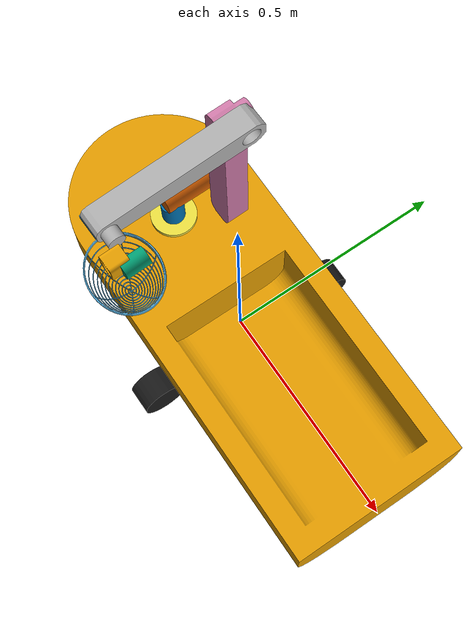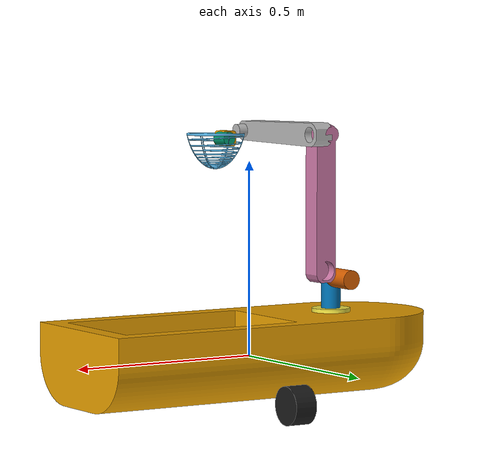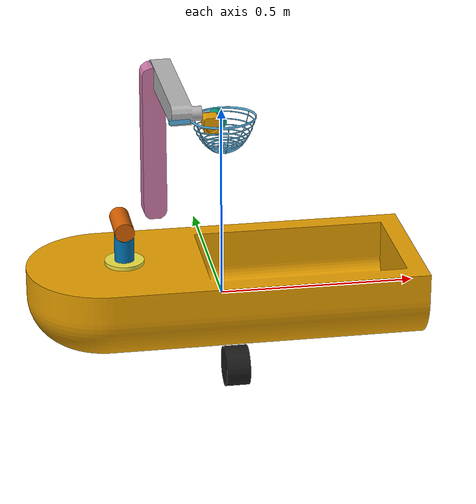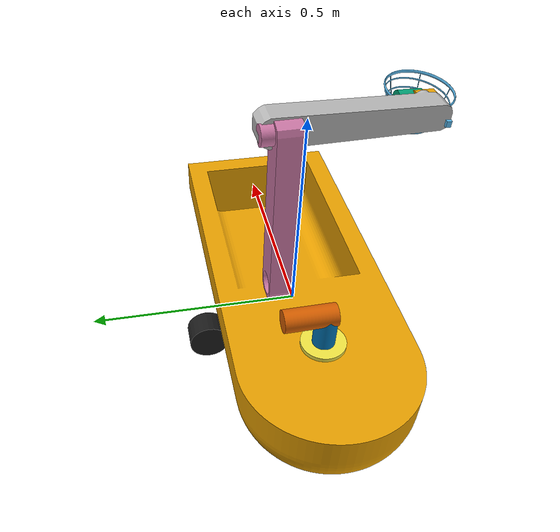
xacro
<?xml version="1.0"?>
<robot name="ele306baat" xmlns:xacro="http://www.ros.org/wiki/xacro">

  <!-- Xacro-parametre (i meter og kg) -->
  <xacro:property name="m" value="30"/>
  <xacro:property name="a" value="1.0"/>  <!-- lengde -->
  <xacro:property name="b" value="0.4"/>  <!-- bredde -->
  <xacro:property name="c" value="0.2"/>  <!-- høyde -->
  <xacro:property name="ox" value="0.5"/>
  <xacro:property name="oy" value="-0.2"/>
  <xacro:property name="oz" value="-0.1"/>
  <xacro:property name="y_off" value="0.22"/>  <!-- avstand sidelengs fra CoM (m) -->
  <xacro:property name="thr_r" value="0.05"/>  <!-- radius på thruster-visual -->
  <xacro:property name="thr_l" value="0.06"/>  <!-- lengde på thruster-visual -->
  <xacro:property name="thr_m" value="0.001"/> <!-- liten masse -->

  <!-- BÅTSKROG / HOVEDKROPP -->
  <link name="base_link">
    <inertial>
      <origin xyz="0 0 -0.1" rpy="0 0 0"/>
      <mass value="${m}"/>
      <inertia
        ixx="${(1.0/12.0)*m*(b*b + c*c)}"
        iyy="${(1.0/12.0)*m*(a*a + c*c)}"
        izz="${(1.0/12.0)*m*(a*a + b*b)}"
        ixy="0" iyz="0" ixz="0"/>
    </inertial>

    <visual name="base_link_visual">
      <origin xyz="${ox} ${oy} ${oz}" rpy="0 0 0"/>
      <geometry>
        <!-- bruk package:// i ROS 2 etter hvert -->
        <mesh filename="$(find usv_package)/meshes/base_link.stl" scale="0.001 0.001 0.001"/>
      </geometry>
    </visual>

    <collision name="base_link_collision">
      <origin xyz="${ox} ${oy} ${oz}" rpy="0 0 0"/>
      <geometry>
        <mesh filename="$(find usv_package)/meshes/base_link.stl" scale="0.001 0.001 0.001"/>
      </geometry>
    </collision>
  </link>

  <!-- VENSTRE THRUSTER (y>0) -->
  <link name="thr_left">
    <inertial>
      <origin xyz="0 0 0" rpy="0 0 0"/>
      <mass value="${thr_m}"/>
      <inertia ixx="1e-6" iyy="1e-6" izz="1e-6" ixy="0" ixz="0" iyz="0"/>
    </inertial>
    <visual>
      <!-- URDF-sylinder peker langs z; roter til x -->
      <origin xyz="0 0 0" rpy="0 1.57079632679 0"/>
      <geometry>
        <cylinder radius="${thr_r}" length="${thr_l}"/>
      </geometry>
      <material name="thr_black">
        <color rgba="0.1 0.1 0.1 1.0"/>
      </material>
    </visual>
    <collision>
      <origin xyz="0 0 0" rpy="0 1.57079632679 0"/>
      <geometry>
        <cylinder radius="${thr_r}" length="${thr_l}"/>
      </geometry>
    </collision>
  </link>

  <!-- HØYRE THRUSTER (y<0) -->
  <link name="thr_right">
    <inertial>
      <origin xyz="0 0 0" rpy="0 0 0"/>
      <mass value="${thr_m}"/>
      <inertia ixx="1e-6" iyy="1e-6" izz="1e-6" ixy="0" ixz="0" iyz="0"/>
    </inertial>
    <visual>
      <origin xyz="0 0 0" rpy="0 1.57079632679 0"/>
      <geometry>
        <cylinder radius="${thr_r}" length="${thr_l}"/>
      </geometry>
      <material name="thr_black">
        <color rgba="0.1 0.1 0.1 1.0"/>
      </material>
    </visual>
    <collision>
      <origin xyz="0 0 0" rpy="0 1.57079632679 0"/>
      <geometry>
        <cylinder radius="${thr_r}" length="${thr_l}"/>
      </geometry>
    </collision>
  </link>

  <!-- VENSTRE: yaw rundt z, plassert ved (0, +y_off, -0.1) -->
  <joint name="thr_left_yaw" type="revolute">
    <parent link="base_link"/>
    <child  link="thr_left"/>
    <origin xyz="0 ${y_off} -0.1" rpy="0 0 0"/>
    <axis xyz="0 0 1"/>                       <!-- yaw-akse -->
    <limit lower="-1.5708" upper="1.5708" effort="15.0" velocity="2.5"/>
    <dynamics damping="1" friction="10"/>
  </joint>

  <!-- HØYRE: yaw rundt z, plassert ved (0, -y_off, -0.1) -->
  <joint name="thr_right_yaw" type="revolute">
    <parent link="base_link"/>
    <child  link="thr_right"/>
    <origin xyz="0 ${-y_off} -0.1" rpy="0 0 0"/>
    <axis xyz="0 0 1"/>
    <limit lower="-1.5708" upper="1.5708" effort="15.0" velocity="2.5"/>
    <dynamics damping="1" friction="10"/>
  </joint>

  <!--  ROBOTARM-LINKER OG JOINTS  -->

  <link name="5DOF_V2-v1_Base-v1">
    <inertial>
      <origin xyz="-3.50785263573333e-17 3.2205047237486456e-17 0.029999999999999933" rpy="0.0 0.0 0.0"/>
      <mass value="0.1"/>
      <inertia ixx="0.0034217834483820206" iyy="0.0034217834483816966" izz="0.00462403168700253"
               ixy="1.1526424346236517e-16" iyz="2.7533655757593897e-18" ixz="-2.7399403517079433e-17"/>
    </inertial>
    <visual name="5DOF_V2-v1_Base-v1_visual">
      <origin xyz="0.0 0.0 0.0" rpy="0.0 0.0 0.0"/>
      <geometry>
        <mesh filename="$(find usv_package)/meshes/5DOF_V2-v1_Base-v1.stl" scale="0.001 0.001 0.001"/>
      </geometry>
    </visual>
    <collision name="5DOF_V2-v1_Base-v1_collision">
      <origin xyz="0.0 0.0 0.0" rpy="0.0 0.0 0.0"/>
      <geometry>
        <mesh filename="$(find usv_package)/meshes/5DOF_V2-v1_Base-v1.stl" scale="0.001 0.001 0.001"/>
      </geometry>
    </collision>
  </link>

  <link name="5DOF_V2-v1_Base_tube2-v1">
    <inertial>
      <origin xyz="-1.6654054514900177e-18 3.325072459910882e-17 0.03054122508269446" rpy="0.0 0.0 0.0"/>
      <mass value="0.1"/>
      <inertia ixx="0.0004542134596046459" iyy="0.00044058603181367347" izz="0.0002995690214890518"
               ixy="1.0927572052527721e-17" iyz="-9.780555404766658e-21" ixz="-6.891596942663357e-18"/>
    </inertial>
    <visual name="5DOF_V2-v1_Base_tube2-v1_visual">
      <origin xyz="0.0 0.0 0.0" rpy="0.0 0.0 0.0"/>
      <geometry>
        <mesh filename="$(find usv_package)/meshes/5DOF_V2-v1_Base_tube2-v1.stl" scale="0.001 0.001 0.001"/>
      </geometry>
    </visual>
    <collision name="5DOF_V2-v1_Base_tube2-v1_collision">
      <origin xyz="0.0 0.0 0.0" rpy="0.0 0.0 0.0"/>
      <geometry>
        <mesh filename="$(find usv_package)/meshes/5DOF_V2-v1_Base_tube2-v1.stl" scale="0.001 0.001 0.001"/>
      </geometry>
    </collision>
  </link>

  <link name="5DOF_V2-v1_Base_tube-v1">
    <inertial>
      <origin xyz="4.7248414473679183e-17 3.957337929572082e-17 0.057500000000007746" rpy="0.0 0.0 0.0"/>
      <mass value="0.1"/>
      <inertia ixx="0.0022304530623574763" iyy="0.002230453062356116" izz="0.0005539204625058387"
               ixy="-5.66792012332329e-17" iyz="3.9400584574481047e-17" ixz="2.5480589387290446e-19"/>
    </inertial>
    <visual name="5DOF_V2-v1_Base_tube-v1_visual">
      <origin xyz="0.0 0.0 0.0" rpy="0.0 0.0 0.0"/>
      <geometry>
        <mesh filename="$(find usv_package)/meshes/5DOF_V2-v1_Base_tube-v1.stl" scale="0.001 0.001 0.001"/>
      </geometry>
    </visual>
    <collision name="5DOF_V2-v1_Base_tube-v1_collision">
      <origin xyz="0.0 0.0 0.0" rpy="0.0 0.0 0.0"/>
      <geometry>
        <mesh filename="$(find usv_package)/meshes/5DOF_V2-v1_Base_tube-v1.stl" scale="0.001 0.001 0.001"/>
      </geometry>
    </collision>
  </link>

  <link name="5DOF_V2-v1_Ledd1-v1">
    <inertial>
      <origin xyz="-6.753873604593077e-07 0.2134588694840161 0.025487981635571387" rpy="0.0 0.0 0.0"/>
      <mass value="0.1"/>
      <inertia ixx="0.11918586547638825" iyy="0.004785496154870996" izz="0.1195753968143904"
               ixy="3.9887786443593526e-07" iyz="-0.0024238492062195094" ixz="-2.9928866193076637e-09"/>
    </inertial>
    <visual name="5DOF_V2-v1_Ledd1-v1_visual">
      <origin xyz="0.0 0.0 0.0" rpy="0.0 0.0 0.0"/>
      <geometry>
        <mesh filename="$(find usv_package)/meshes/5DOF_V2-v1_Ledd1-v1.stl" scale="0.001 0.001 0.001"/>
      </geometry>
    </visual>
    <collision name="5DOF_V2-v1_Ledd1-v1_collision">
      <origin xyz="0.0 0.0 0.0" rpy="0.0 0.0 0.0"/>
      <geometry>
        <mesh filename="$(find usv_package)/meshes/5DOF_V2-v1_Ledd1-v1.stl" scale="0.001 0.001 0.001"/>
      </geometry>
    </collision>
  </link>

  <link name="5DOF_V2-v1_Ledd2-v1">
    <inertial>
      <origin xyz="9.738045645997853e-09 0.1808883564974194 0.02553390149019094" rpy="0.0 0.0 0.0"/>
      <mass value="0.1"/>
      <inertia ixx="0.076854691499524" iyy="0.0036753264512904412" izz="0.07694224533843542"
               ixy="-1.0873018443745157e-08" iyz="-0.0015209339212538377" ixz="-2.6955421273972656e-09"/>
    </inertial>
    <visual name="5DOF_V2-v1_Ledd2-v1_visual">
      <origin xyz="0.0 0.0 0.0" rpy="0.0 0.0 0.0"/>
      <geometry>
        <mesh filename="$(find usv_package)/meshes/5DOF_V2-v1_Ledd2-v1.stl" scale="0.001 0.001 0.001"/>
      </geometry>
    </visual>
    <collision name="5DOF_V2-v1_Ledd2-v1_collision">
      <origin xyz="0.0 0.0 0.0" rpy="0.0 0.0 0.0"/>
      <geometry>
        <mesh filename="$(find usv_package)/meshes/5DOF_V2-v1_Ledd2-v1.stl" scale="0.001 0.001 0.001"/>
      </geometry>
    </collision>
  </link>

  <link name="5DOF_V2-v1_Ledd-4-v1">
    <inertial>
      <origin xyz="0.020000000000004358 0.020000000000003616 0.017234320051566592" rpy="0.0 0.0 0.0"/>
      <mass value="0.1"/>
      <inertia ixx="9.937381668031846e-05" iyy="9.93738166803096e-05" izz="0.00011088625479222827"
               ixy="1.2510862322193676e-18" iyz="-1.9775176354292115e-20" ixz="-1.1469673138770481e-17"/>
    </inertial>
    <visual name="5DOF_V2-v1_Ledd-4-v1_visual">
      <origin xyz="0.0 0.0 0.0" rpy="0.0 0.0 0.0"/>
      <geometry>
        <mesh filename="$(find usv_package)/meshes/5DOF_V2-v1_Ledd-4-v1.stl" scale="0.001 0.001 0.001"/>
      </geometry>
    </visual>
    <collision name="5DOF_V2-v1_Ledd-4-v1_collision">
      <origin xyz="0.0 0.0 0.0" rpy="0.0 0.0 0.0"/>
      <geometry>
        <mesh filename="$(find usv_package)/meshes/5DOF_V2-v1_Ledd-4-v1.stl" scale="0.001 0.001 0.001"/>
      </geometry>
    </collision>
  </link>

  <link name="5DOF_V2-v1_fryer-complete-v1">
    <inertial>
      <origin xyz="0.18516803814723812 0.0074877264097060765 0.00021416620249091518" rpy="0.0 0.0 0.0"/>
      <mass value="0.1"/>
      <inertia ixx="0.0006142619467787169" iyy="0.010186938591218588" izz="0.010294427459442155"
               ixy="-0.0012667326354611457" iyz="-2.2136922976051193e-07" ixz="2.2787122485625748e-05"/>
    </inertial>
    <visual name="5DOF_V2-v1_fryer-complete-v1_visual">
      <origin xyz="0.0 0.0 0.0" rpy="0.0 0.0 0.0"/>
      <geometry>
        <mesh filename="$(find usv_package)/meshes/5DOF_V2-v1_fryer-complete-v1.stl" scale="0.001 0.001 0.001"/>
      </geometry>
    </visual>
    <collision name="5DOF_V2-v1_fryer-complete-v1_collision">
      <origin xyz="0.0 0.0 0.0" rpy="0.0 0.0 0.0"/>
      <geometry>
        <mesh filename="$(find usv_package)/meshes/5DOF_V2-v1_fryer-complete-v1.stl" scale="0.001 0.001 0.001"/>
      </geometry>
    </collision>
  </link>

  <link name="5DOF_V2-v1_Ledd5-v1">
    <inertial>
      <origin xyz="5.791883797658625e-17 1.9831390820599319e-16 0.02500000000000081" rpy="0.0 0.0 0.0"/>
      <mass value="0.1"/>
      <inertia ixx="0.00010758500113428109" iyy="0.00010758500113439714" izz="5.782447958594017e-05"
               ixy="-1.2697870912289562e-17" iyz="-1.1350424613618553e-20" ixz="-1.3866654853379093e-17"/>
    </inertial>
    <visual name="5DOF_V2-v1_Ledd5-v1_visual">
      <origin xyz="0.0 0.0 0.0" rpy="0.0 0.0 0.0"/>
      <geometry>
        <mesh filename="$(find usv_package)/meshes/5DOF_V2-v1_Ledd5-v1.stl" scale="0.001 0.001 0.001"/>
      </geometry>
    </visual>
    <collision name="5DOF_V2-v1_Ledd5-v1_collision">
      <origin xyz="0.0 0.0 0.0" rpy="0.0 0.0 0.0"/>
      <geometry>
        <!-- FIKSET: fjernet dobbel $(find usv_package)/ -->
        <mesh filename="$(find usv_package)/meshes/5DOF_V2-v1_Ledd5-v1.stl" scale="0.001 0.001 0.001"/>
      </geometry>
    </collision>
  </link>

  <!-- KOBLING ARM ↔ BÅT -->
  <joint name="arm_to_base" type="fixed">
    <parent link="base_link"/>
    <child  link="5DOF_V2-v1_Base-v1"/>
    <!-- Velg monteringsposisjon på dekk. Juster xyz ved behov. -->
    <origin xyz="-0.25 0.0 0.05" rpy="0 0 0"/>
  </joint>

  <!-- INTERNE LEDD I ARMEN (som i original-URDF) -->

  <joint name="5DOF_V2-v1_Base-v1_Revolute-1" type="continuous">
    <origin xyz="3.4449512753553793e-09 3.219265067855304e-09 0.05999999999999936"
            rpy="2.8608031150340146e-17 1.088186942308888e-15 1.583429200060294"/>
    <parent link="5DOF_V2-v1_Base-v1"/>
    <child  link="5DOF_V2-v1_Base_tube2-v1"/>
    <axis xyz="0 0 1.0"/>
  </joint>

  <joint name="5DOF_V2-v1_Base_tube2-v1_Rigid-2" type="fixed">
    <origin xyz="-0.02 0.0 0.08"
            rpy="0 1.5708 0"/>
    <parent link="5DOF_V2-v1_Base_tube2-v1"/>
    <child  link="5DOF_V2-v1_Base_tube-v1"/>
  </joint>

  <joint name="5DOF_V2-v1_Ledd1-v1_Revolute-4" type="continuous">
    <origin xyz="-9.16609224077547e-10 0.37999999999999307 0.07499999504391575"
            rpy="-1.5707963267948963 0.012632873265397596 1.5708"/>
    <parent link="5DOF_V2-v1_Ledd1-v1"/>
    <child  link="5DOF_V2-v1_Ledd2-v1"/>
    <axis xyz="-0.012633000000000004 -0.99992 -5.799401443819225e-33"/>
  </joint>

  <joint name="5DOF_V2-v1_Ledd-4-v1_Revolute-9" type="continuous">
    <origin xyz="0.020000001123706285 0.039999999999984936 0.019999999181395153"
            rpy="-3.1415926535897927 0.0126328732654071 -2.226143245893908e-15"/>
    <parent link="5DOF_V2-v1_Ledd-4-v1"/>
    <child  link="5DOF_V2-v1_Ledd5-v1"/>
    <axis xyz="-1.7347234759758815e-18 -1.0 0.0"/>
  </joint>

  <joint name="5DOF_V2-v1_Ledd5-v1_Rigid-11" type="fixed">
    <origin xyz="8.18604810604029e-10 1.1237057151447515e-09 1.3926637620897963e-14"
            rpy="7.95274871898862e-16 2.5014215493744513e-14 1.5581634535294897"/>
    <parent link="5DOF_V2-v1_Ledd5-v1"/>
    <child  link="5DOF_V2-v1_fryer-complete-v1"/>
  </joint>

  <joint name="5DOF_V2-v1_Base_tube-v1_Revolute-13" type="continuous">
    <origin xyz="0 -0.09 0.08"
            rpy="0 0.012632873265397289 1.5708"/>
    <parent link="5DOF_V2-v1_Base_tube-v1"/>
    <child  link="5DOF_V2-v1_Ledd1-v1"/>
    <axis xyz="0 0 1.5708"/>
  </joint>

  <joint name="5DOF_V2-v1_Ledd2-v1_Revolute-15" type="continuous">
    <origin xyz="3.8774454111489834e-07 0.3299999999999883 0.07499999975316342"
            rpy="1.570796326794897 -0.012632873265408419 -3.1415926535897913"/>
    <parent link="5DOF_V2-v1_Ledd2-v1"/>
    <child  link="5DOF_V2-v1_Ledd-4-v1"/>
    <axis xyz="0.012633 0.99992 2.3493747465131305e-32"/>
  </joint>

  <!--         GAZEBO-OPPSETT       -->

  <!-- Gazebo-tillegg: la Gazebo finne plugin via GAZEBO_PLUGIN_PATH -->
  <gazebo>
    <disableFixedJointLumping>true</disableFixedJointLumping>

    <plugin name="buoyancy" filename="libbuoyancy_plugin.so">
      <fluid_density>1000</fluid_density>
      <surface_z>0.0</surface_z>
      <link name="base_link">
        <waterplane_area>0.4</waterplane_area>
        <height>0.2</height>
        <linear_damping>30.0</linear_damping>
        <angular_damping>30.0</angular_damping>
        <k_righting>50.0</k_righting>
        <cob>
          <x>0</x><y>0</y><z>0.13</z>
        </cob>
      </link>
    </plugin>

    <plugin name="thr_left_force" filename="libgazebo_ros_force.so">
      <ros>
        <namespace>/usv</namespace>
        <remapping>gazebo_ros_force:=/usv/left_thrust</remapping>
      </ros>
      <link_name>thr_left</link_name>
      <force_frame>link</force_frame>   <!-- kraft i thruster-linkens ramme -->
    </plugin>

    <plugin name="thr_right_force" filename="libgazebo_ros_force.so">
      <ros>
        <namespace>/usv</namespace>
        <remapping>gazebo_ros_force:=/usv/right_thrust</remapping>
      </ros>
      <link_name>thr_right</link_name>
      <force_frame>link</force_frame>
    </plugin>

  </gazebo>

  <!--        ros2_control          -->

  <ros2_control name="usv_hw" type="system">
    <hardware>
      <plugin>gazebo_ros2_control/DefaultSystem</plugin>
    </hardware>

    <!-- Vi styrer yaw-posisjon på begge thrustere -->
    <joint name="thr_left_yaw">
      <command_interface name="position"/>
      <state_interface   name="position"/>
      <state_interface   name="velocity"/>
    </joint>
    <joint name="thr_right_yaw">
      <command_interface name="position"/>
      <state_interface   name="position"/>
      <state_interface   name="velocity"/>
    </joint>
  </ros2_control>

</robot>
